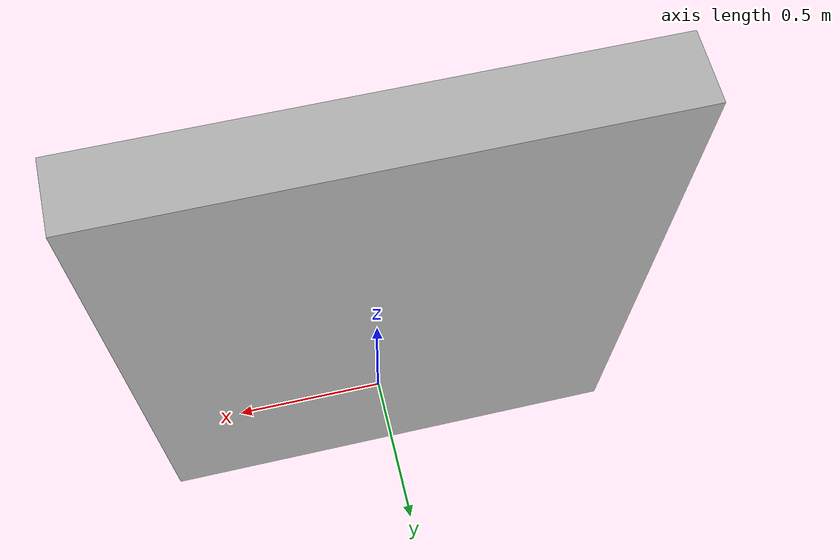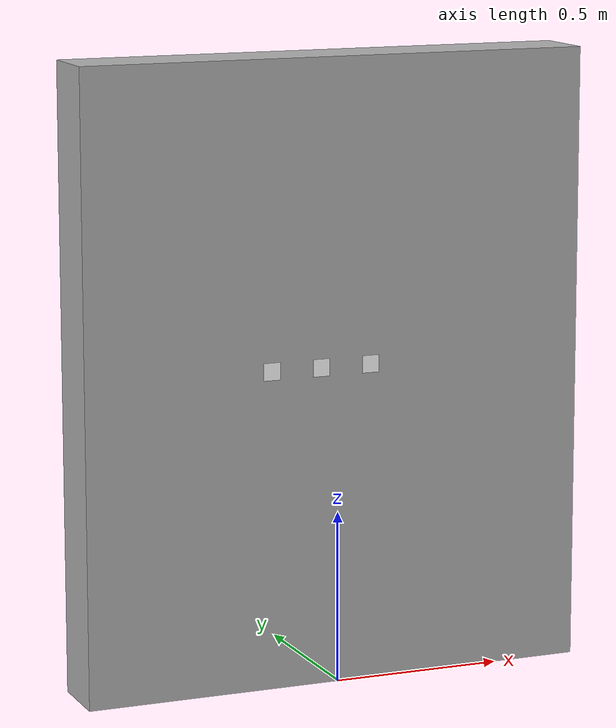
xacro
<?xml version="1.0"?>

<robot name="panel_interruptores" xmlns:xacro="http://www.ros.org/wiki/xacro">

<link name="world" />

<joint name="panel" type="fixed">
  <parent link="world"/>
  <child link="panel_link"/>
  <origin xyz="0 0 0" rpy="0 0 0" />
</joint>

<link name="panel_link">
  <visual>
    <geometry>
      <box size="1.5 0.2 1.8" />
    </geometry>
    <origin rpy="0 0 0" xyz="0 ${0.2/2} ${1.8/2}" />
    <material name="grey">
      <color rgba="0.7 0.7 0.7 1" />
    </material>
  </visual>
  <collision>
    <origin rpy="0 0 0" xyz="0 ${0.2/2} ${1.8/2}" />
    <geometry>
      <box size="1.5 0.2 1.8" />
    </geometry>
  </collision>
  <inertial>
    <origin rpy="0 0 0" xyz="0 ${0.2/2} ${1.8/2}" />
    <mass value="100" />
      <inertia ixx="10" ixy="0.0" ixz="0.0" iyy="10" iyz="0.0" izz="10"/>
  </inertial>
</link>

<gazebo reference="panel_link">
  <material>Gazebo/Grey</material>
  <mu1>1</mu1>
  <mu2>1</mu2>
  <selfCollide>true</selfCollide>
  <turnGravityOff>false</turnGravityOff>
</gazebo>

<xacro:macro name="qr_code" params="parent interruptor_id *origin">

  <joint name="qr_${interruptor_id}" type="fixed">
    <insert_block name="origin" />
    <parent link="${parent}"/>
    <child link="qr_${interruptor_id}_link"/>
    <origin xyz="0 0 0" rpy="0 0 0" />
  </joint>

  <link name="qr_${interruptor_id}_link">
    <visual>
      <geometry>
        <box size="0.05 0.002 0.05" />
      </geometry>
      <origin rpy="0 0 0" xyz="0 ${-0.002/2} ${0.05/2}" />
      <material name="white">
        <color rgba="1 1 1 1" />
      </material>
    </visual>
    <collision>
      <origin rpy="0 0 0" xyz="0 ${-0.002/2} ${0.05/2}" />
      <geometry>
        <box size="0.05 0.002 0.05" />
      </geometry>
    </collision>
    <inertial>
      <origin rpy="0 0 0" xyz="0 ${-0.002/2} ${0.05/2}" />
      <mass value="0.001" />
        <inertia ixx="0.001" ixy="0.0" ixz="0.0" iyy="0.001" iyz="0.0" izz="0.001"/>
    </inertial>
  </link>

  <gazebo reference="qr_${interruptor_id}_link">
    <material>objetos_fer/${interruptor_id}</material>
    <mu1>1</mu1>
    <mu2>1</mu2>
    <selfCollide>true</selfCollide>
    <turnGravityOff>false</turnGravityOff>
  </gazebo>

</xacro:macro>

<qr_code parent="panel_link" interruptor_id="interruptor_1">
  <origin rpy="0 0 0" xyz="-0.2 0 0.9" />
</qr_code>

<qr_code parent="panel_link" interruptor_id="interruptor_2">
  <origin rpy="0 0 0" xyz="-0.05 0 0.9" />
</qr_code>

<qr_code parent="panel_link" interruptor_id="interruptor_3">
  <origin rpy="0 0 0" xyz="0.10 0 0.9" />
</qr_code>

</robot>
